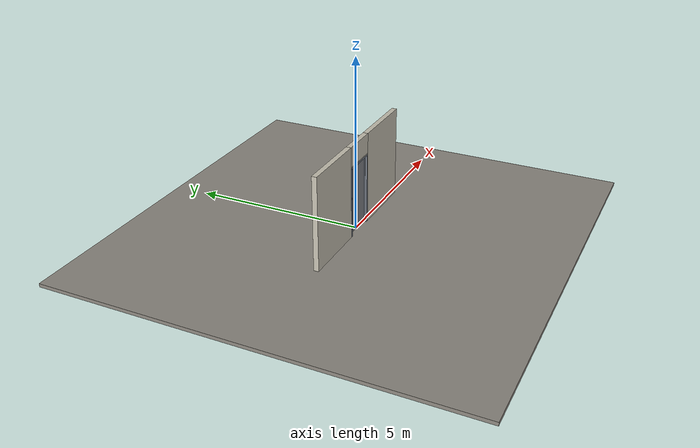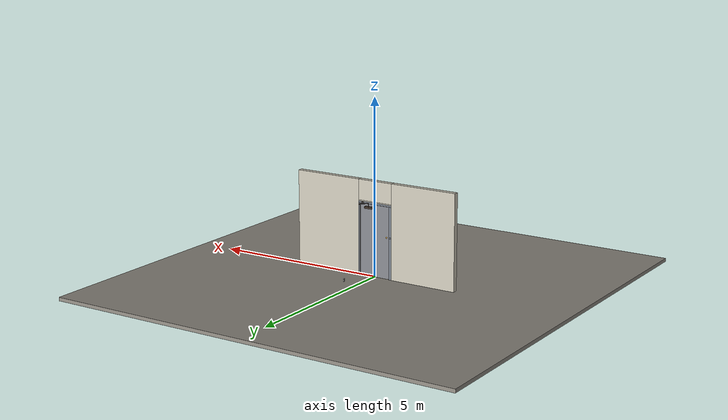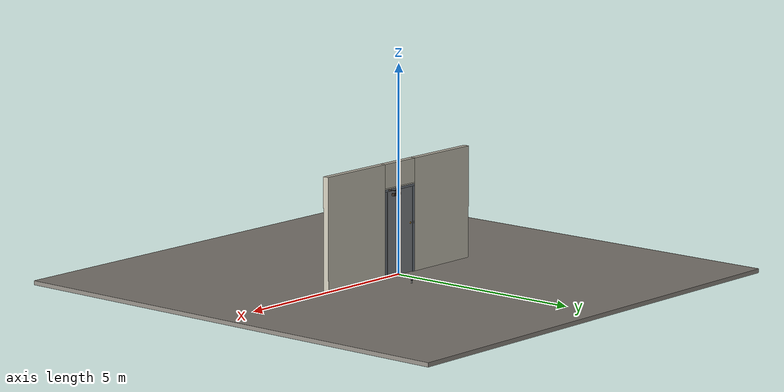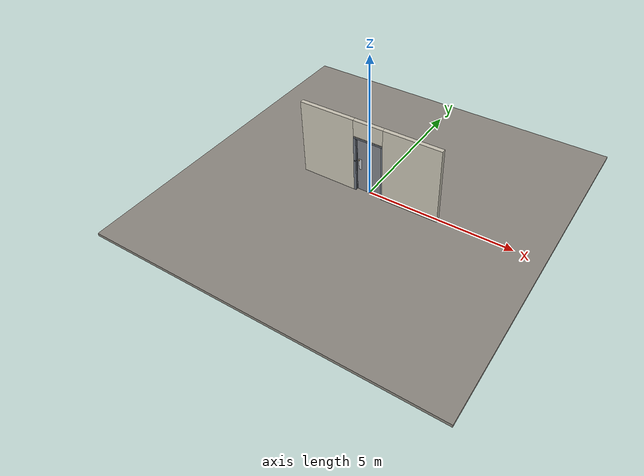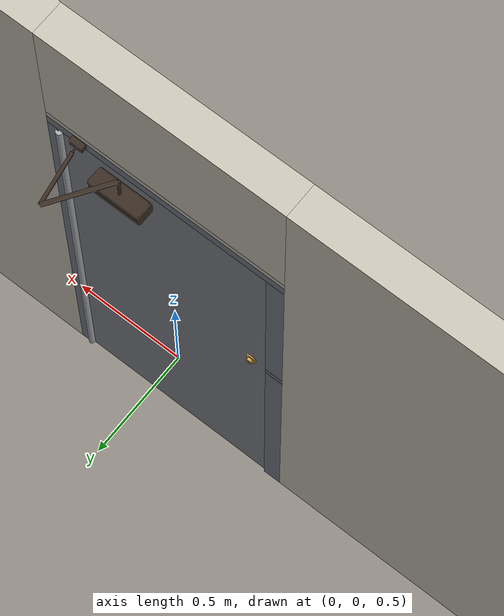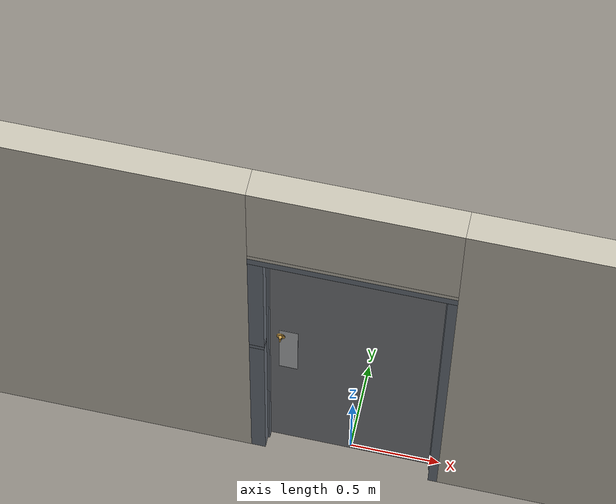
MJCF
<?xml version="1.0" ?>
<mujoco model="db0063_swing_single_full">
  <compiler angle="radian" meshdir="../../hardware" texturedir="../../textures" autolimits="true" inertiafromgeom="false"/>
  <option timestep="0.002" integrator="implicitfast" cone="elliptic" impratio="10" noslip_iterations="3">
    <flag multiccd="enable"/>
  </option>
  <size memory="16M"/>
  <default>
    <geom condim="4" solref="0.005 1" solimp="0.95 0.99 0.001"/>
    <joint solreflimit="0.005 1" solimplimit="0.95 0.99 0.001"/>
    <tendon solreflimit="0.005 1"/>
    <equality solref="0.002 1"/>
  </default>
  <visual>
    <headlight ambient="0.4 0.4 0.4" diffuse="0.7 0.7 0.7" specular="0.2 0.2 0.2"/>
    <quality shadowsize="4096"/>
    <map znear="0.01" zfar="60"/>
  </visual>
  <asset>
    <mesh name="closer_body_b226fdb10b" file="closer_body_b226fdb10b.obj"/>
    <mesh name="cyl_face_e9e5036966" file="cyl_face_e9e5036966.obj"/>
    <mesh name="thumbturn_eb5c9899a3" file="thumbturn_eb5c9899a3.obj"/>
    <material name="mat_floor" rgba="0.55 0.53 0.5 1" specular="0.2" shininess="0.15" reflectance="0"/>
    <material name="mat_wall" rgba="0.78 0.76 0.7 1" specular="0.2" shininess="0.1" reflectance="0"/>
    <material name="mat_leaf" rgba="0.5 0.51 0.53 1" specular="0.23" shininess="0.4" reflectance="0.02"/>
    <material name="mat_hinge" rgba="0.65 0.66 0.68 1" specular="0.74" shininess="0.5" reflectance="0.36"/>
    <material name="mat_op_stainless" rgba="0.75 0.76 0.77 1" specular="0.8" shininess="0.65" reflectance="0.4"/>
    <material name="mat_deadbolt" rgba="0.85 0.66 0.3 1" specular="0.8" shininess="0.75" reflectance="0.4"/>
    <material name="mat_frame" rgba="0.45 0.48 0.52 1" specular="0.32" shininess="0.6" reflectance="0.08"/>
    <material name="mat_closer" rgba="0.22 0.17 0.13 1" specular="0.8" shininess="0.6" reflectance="0.4"/>
    <material name="mat_bumper_stop" rgba="0.08 0.08 0.08 1" specular="0.2" shininess="0.1" reflectance="0"/>
    <material name="mat_stop_base" rgba="0.9 0.9 0.92 1" specular="0.8" shininess="0.9" reflectance="0.4"/>
    <texture name="skybox" type="skybox" builtin="gradient" rgb1="0.6 0.7 0.85" rgb2="0.9 0.92 0.95" width="256" height="256"/>
  </asset>
  <worldbody>
    <light name="sun" pos="1.5 -2.5 4" dir="-0.3 0.5 -0.8" directional="true" diffuse="0.8 0.8 0.8" specular="0.3 0.3 0.3" castshadow="true"/>
    <light name="fill" pos="-1.5 2.5 3" dir="0.3 -0.5 -0.7" directional="true" diffuse="0.35 0.35 0.4" castshadow="false"/>
    <camera name="robot_view" pos="0 -2.585687 1.734312" xyaxes="1 0 0 0 0.26963 0.962964" fovy="52"/>
    <camera name="far_view" pos="0 2.498687 1.734312" xyaxes="-1 0 0 0 -0.26963 0.962964" fovy="52"/>
    <camera name="iso" pos="-1.932062 -2.178937 2.141063" xyaxes="0.741536 -0.670913 0 0.242917 0.268487 0.932151" fovy="46"/>
    <camera name="detail_handle" pos="-0.1735 -0.8435 1.32" xyaxes="0.97561 0.219512 0 -0.070934 0.315262 0.94635" fovy="38"/>
    <geom name="floor" type="box" size="6 6 0.05" pos="0 0 -0.05" material="mat_floor" group="0" contype="1" conaffinity="1" friction="0.8 0.005 0.0001" density="2400"/>
    <geom name="wall_left" type="box" size="0.97975 0.0725 1.35" pos="-1.52025 -0.0435 1.35" material="mat_wall" group="0" contype="1" conaffinity="1" friction="0.6 0.005 0.0001" density="800"/>
    <geom name="wall_right" type="box" size="0.99475 0.0725 1.35" pos="1.50525 -0.0435 1.35" material="mat_wall" group="0" contype="1" conaffinity="1" friction="0.6 0.005 0.0001" density="800"/>
    <geom name="wall_header" type="box" size="0.5255 0.0725 0.2875" pos="-0.015 -0.0435 2.4125" material="mat_wall" group="0" contype="1" conaffinity="1" friction="0.6 0.005 0.0001" density="800"/>
    <geom name="leaf_deadbolt_strike_b" type="box" size="0.0155 0.003 0.0005" pos="-0.46 0 1.1615" quat="0.5 0.5 0.5 0.5" material="mat_deadbolt" group="1" contype="0" conaffinity="0" density="7800"/>
    <geom name="leaf_deadbolt_strike_l" type="box" size="0.003 0.0155 0.0005" pos="-0.46 -0.0125 1.18" quat="0.5 0.5 0.5 0.5" material="mat_deadbolt" group="1" contype="0" conaffinity="0" density="7800"/>
    <geom name="leaf_deadbolt_strike_t" type="box" size="0.0155 0.003 0.0005" pos="-0.46 0 1.1985" quat="0.5 0.5 0.5 0.5" material="mat_deadbolt" group="1" contype="0" conaffinity="0" density="7800"/>
    <geom name="leaf_deadbolt_strike_r" type="box" size="0.003 0.0155 0.0005" pos="-0.46 0.0125 1.18" quat="0.5 0.5 0.5 0.5" material="mat_deadbolt" group="1" contype="0" conaffinity="0" density="7800"/>
    <geom name="jamb_hinge" type="box" size="0.025 0.0725 1.0225" pos="0.4855 -0.0435 1.0225" material="mat_frame" group="0" contype="1" conaffinity="1" friction="0.6 0.005 0.0001" density="300"/>
    <geom name="strike_1180_wall_n" type="box" size="0.04 0.05325 0.0155" pos="-0.5005 -0.06275 1.18" material="mat_frame" group="0" contype="1" conaffinity="1" friction="0.6 0.005 0.0001" density="300"/>
    <geom name="strike_1180_wall_p" type="box" size="0.04 0.00975 0.0155" pos="-0.5005 0.01925 1.18" material="mat_frame" group="0" contype="1" conaffinity="1" friction="0.6 0.005 0.0001" density="300"/>
    <geom name="strike_1180_back" type="box" size="0.0253 0.0095 0.0155" pos="-0.5152 0 1.18" material="mat_frame" group="0" contype="1" conaffinity="1" friction="0.6 0.005 0.0001" density="300"/>
    <geom name="jamb_strike_0" type="box" size="0.04 0.0725 0.58225" pos="-0.5005 -0.0435 0.58225" material="mat_frame" group="0" contype="1" conaffinity="1" friction="0.6 0.005 0.0001" density="300"/>
    <geom name="jamb_strike_1" type="box" size="0.04 0.0725 0.42475" pos="-0.5005 -0.0435 1.62025" material="mat_frame" group="0" contype="1" conaffinity="1" friction="0.6 0.005 0.0001" density="300"/>
    <geom name="jamb_head" type="box" size="0.5255 0.0725 0.025" pos="-0.015 -0.0435 2.07" material="mat_frame" group="0" contype="1" conaffinity="1" friction="0.6 0.005 0.0001" density="300"/>
    <geom name="head_stud" type="box" size="0.5255 0.0725 0.015" pos="-0.015 -0.0435 2.11" material="mat_wall" group="0" contype="1" conaffinity="1" friction="0.6 0.005 0.0001" density="500"/>
    <geom name="stop_hinge" type="box" size="0.0055 0.016 1.0225" pos="0.455 -0.0385 1.0225" material="mat_frame" group="0" contype="1" conaffinity="1" friction="0.6 0.005 0.0001" density="300"/>
    <geom name="stop_strike" type="box" size="0.0055 0.016 1.0225" pos="-0.455 -0.0385 1.0225" material="mat_frame" group="0" contype="1" conaffinity="1" friction="0.6 0.005 0.0001" density="300"/>
    <geom name="stop_head" type="box" size="0.4605 0.016 0.0055" pos="0 -0.0385 2.0395" material="mat_frame" group="0" contype="1" conaffinity="1" friction="0.6 0.005 0.0001" density="300"/>
    <geom name="closer_bracket" type="box" size="0.03 0.012 0.014" pos="0.3605 0.041 2.075" material="mat_closer" group="1" contype="0" conaffinity="0" density="2700"/>
    <geom name="door_stop_base" type="cylinder" size="0.022 0.003" pos="0.4735 0.8059 0.003" material="mat_stop_base" group="0" contype="1" conaffinity="1" friction="0.6 0.005 0.0001" density="7850"/>
    <geom name="door_stop_post" type="cylinder" size="0.012 0.0245" pos="0.4735 0.8059 0.0305" material="mat_stop_base" group="0" contype="1" conaffinity="1" friction="0.6 0.005 0.0001" density="7850"/>
    <geom name="door_stop_bumper" type="cylinder" size="0.022 0.02" pos="0.4735 0.8059 0.075" material="mat_bumper_stop" group="0" contype="1" conaffinity="1" friction="0.6 0.005 0.0001" density="1100"/>
    <site name="approach_point" pos="0 -1.5 0" quat="1 0 0 0" size="0.05" rgba="0.2 0.9 0.2 0.5" group="4"/>
    <site name="goal_point" pos="0 1.5 0" quat="1 0 0 0" size="0.05" rgba="0.2 0.9 0.2 0.5" group="4"/>
    <site name="door_plane_center" pos="0 0 1.0225" quat="1 0 0 0" size="0.02" rgba="0.2 0.9 0.2 0.5" group="4"/>
    <body name="leaf" pos="0.4605 0 0">
      <inertial pos="-0.406372 0.012477 1.185619" mass="40.250202" quat="0.513541 -0.511336 -0.497883 -0.476365" diaginertia="2.816581825 16.267977698 19.037031605"/>
      <joint name="leaf_hinge" type="hinge" axis="0 0 -1" pos="-0.003 0.029 0" limited="true" range="0 1.570796" damping="10.25611" frictionloss="0.792352" stiffness="13.057072" springref="-1.488848" armature="0.02"/>
      <geom name="leaf_slab" type="box" size="0.457 0.022 1.016" pos="-0.46 0 1.025" material="mat_leaf" group="0" contype="1" conaffinity="1" friction="0.4 0.005 0.0001" density="1"/>
      <geom name="hinge_continuous" type="cylinder" size="0.0136 1.006" pos="-0.003 0.029 1.025" material="mat_hinge" group="1" contype="0" conaffinity="0" density="2700"/>
      <geom name="leaf_push_plate_n" type="box" size="0.05 0.0008 0.2" pos="-0.812 -0.0228 1.04" material="mat_op_stainless" group="1" contype="0" conaffinity="0" density="7900"/>
      <geom name="leaf_deadbolt_faceplate" type="box" size="0.0006 0.014 0.0245" pos="-0.9164 0 1.18" material="mat_deadbolt" group="1" contype="0" conaffinity="0" density="8500"/>
      <geom name="leaf_deadbolt_cylinder_face" type="mesh" mesh="cyl_face_e9e5036966" pos="-0.852 0.022 1.18" quat="0 0 0.707107 0.707107" material="mat_deadbolt" group="1" contype="0" conaffinity="0" density="7100"/>
      <geom name="closer_body" type="mesh" mesh="closer_body_b226fdb10b" pos="-0.3 0.022 1.952" quat="0 0 0.707107 0.707107" material="mat_closer" group="1" contype="0" conaffinity="0" density="2000"/>
      <geom name="closer_body_col" type="box" size="0.12 0.04 0.03" pos="-0.3 0.062 1.952" material="mat_closer" group="3" contype="1" conaffinity="1" rgba="0.8 0.3 0.3 0.25" friction="0.6 0.005 0.0001" density="2000"/>
      <geom name="closer_pinion_shaft" type="cylinder" size="0.008 0.0615" pos="-0.3 0.064 2.0135" material="mat_closer" group="1" contype="0" conaffinity="0" density="2700"/>
      <site name="leaf_push_plate_push_n" pos="-0.812 -0.022 1.04" quat="1 0 0 0" size="0.012" rgba="0.2 0.9 0.2 0.5" group="4"/>
      <site name="leaf_edge_mid" pos="-0.917 0 1.016" quat="1 0 0 0" size="0.02" rgba="0.2 0.9 0.2 0.5" group="4"/>
      <body name="leaf_deadbolt" pos="-0.917 0 1.18">
        <inertial pos="0.0023 0 0" mass="0.18836" quat="0 0 0.707107 0.707107" diaginertia="0.000013829 0.000052194 0.000057986"/>
        <joint name="leaf_deadbolt_slide" type="slide" axis="1 0 0" limited="true" range="0 0.0254" damping="5" frictionloss="1.5" armature="0.1"/>
        <geom name="leaf_deadbolt_box" type="box" size="0.0277 0.008 0.0125" pos="0.0023 0 0" material="mat_deadbolt" group="0" contype="1" conaffinity="1" friction="0.3 0.005 0.0001" density="8500"/>
      </body>
      <body name="leaf_deadbolt_thumbturn" pos="-0.852 -0.022 1.18">
        <inertial pos="0 -0.012928 0" mass="0.178946" quat="0.5 0.5 0.5 0.5" diaginertia="0.000026045 0.000026215 0.000032438"/>
        <joint name="leaf_deadbolt_thumbturn_hinge" type="hinge" axis="0 1 0" limited="true" range="0 1.5708" damping="0.05" frictionloss="0.35" armature="0.005"/>
        <geom name="leaf_deadbolt_thumbturn_mesh" type="mesh" mesh="thumbturn_eb5c9899a3" pos="0 0 0" quat="0 0 -0.707107 0.707107" material="mat_deadbolt" group="0" contype="1" conaffinity="1" friction="0.6 0.005 0.0001" density="7100"/>
        <geom name="leaf_deadbolt_thumbturn_col" type="box" size="0.006 0.012 0.016" pos="0 -0.02 0" material="mat_deadbolt" group="3" contype="1" conaffinity="1" rgba="0.8 0.3 0.3 0.25" friction="0.6 0.005 0.0001" density="7100"/>
      </body>
      <body name="closer_arm_main" pos="-0.3 0.064 2.075" quat="0.881485 0 0 0.472212">
        <inertial pos="0.14 0 0" mass="0.12096" quat="1 0 0 0" diaginertia="0.000003588 0.00079128 0.000792852"/>
        <joint name="closer_pinion" type="hinge" axis="0 0 1" limited="false" damping="0.01" armature="0.002"/>
        <geom name="closer_arm_main_geom" type="box" size="0.14 0.008 0.005" pos="0.14 0 0" material="mat_closer" group="1" contype="0" conaffinity="0" density="2700"/>
        <body name="closer_arm_fore" pos="0.28 0 0" quat="0.371222 0 0 -0.928544">
          <inertial pos="0.128088 0 0" mass="0.076531" quat="1 0 0 0" diaginertia="0.000001771 0.000437665 0.000438201"/>
          <joint name="closer_elbow" type="hinge" axis="0 0 1" limited="false" damping="0.01" armature="0.002"/>
          <geom name="closer_arm_fore_geom" type="box" size="0.1125 0.007 0.004" pos="0.1125 0 0" material="mat_closer" group="1" contype="0" conaffinity="0" density="2700"/>
          <geom name="closer_fore_neck" type="box" size="0.0175 0.003 0.003" pos="0.2425 0 0" material="mat_closer" group="1" contype="0" conaffinity="0" density="2700"/>
          <geom name="closer_fore_pivot" type="cylinder" size="0.005 0.012" pos="0.26 0 0" material="mat_closer" group="1" contype="0" conaffinity="0" density="2700"/>
        </body>
      </body>
    </body>
  </worldbody>
  <equality>
    <joint name="leaf_deadbolt_couple" joint1="leaf_deadbolt_slide" joint2="leaf_deadbolt_thumbturn_hinge" polycoef="0 0.01617 0 0 0" active="true"/>
    <connect name="closer_arm_connect" body1="closer_arm_fore" body2="world" anchor="0.26 0 0" active="true"/>
  </equality>
  <contact>
    <exclude body1="leaf_deadbolt" body2="leaf_deadbolt_thumbturn"/>
    <exclude body1="closer_arm_main" body2="leaf"/>
    <exclude body1="closer_arm_fore" body2="leaf"/>
    <exclude body1="closer_arm_main" body2="closer_arm_fore"/>
  </contact>
  <sensor>
    <jointpos name="leaf_hinge_pos" joint="leaf_hinge"/>
    <jointvel name="leaf_hinge_vel" joint="leaf_hinge"/>
    <jointpos name="leaf_deadbolt_slide_pos" joint="leaf_deadbolt_slide"/>
    <jointvel name="leaf_deadbolt_slide_vel" joint="leaf_deadbolt_slide"/>
    <jointpos name="leaf_deadbolt_thumbturn_hinge_pos" joint="leaf_deadbolt_thumbturn_hinge"/>
    <jointvel name="leaf_deadbolt_thumbturn_hinge_vel" joint="leaf_deadbolt_thumbturn_hinge"/>
  </sensor>
</mujoco>
